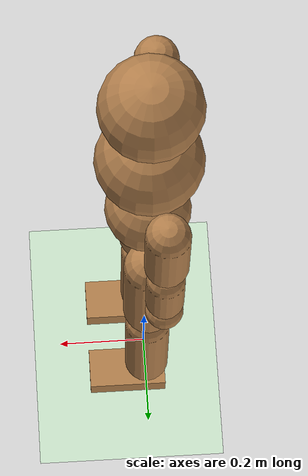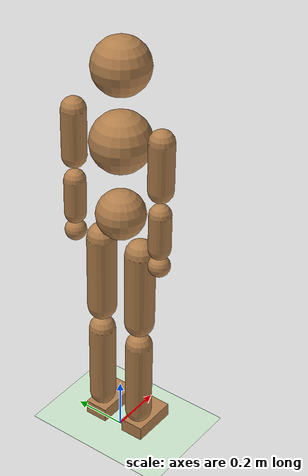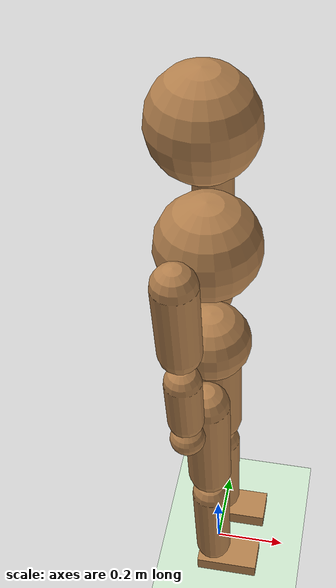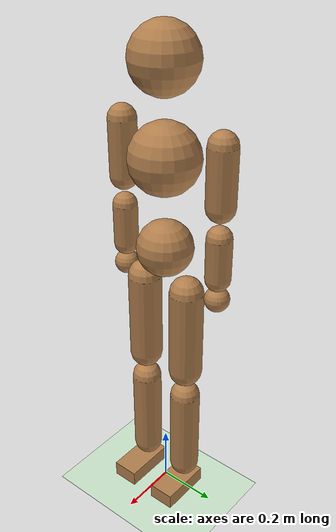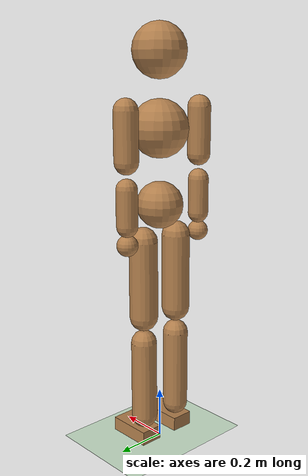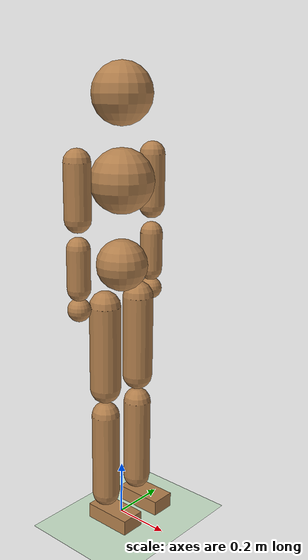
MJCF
<mujoco model="humanoid">
    <compiler angle="radian"/>

    <option iterations="1" ls_iterations="4" solver="Newton" cone="pyramidal" impratio="100">
        <flag eulerdamp="disable"/>
    </option>

    <default>
        <joint limited="true" armature="1" damping="1"/>
        <geom conaffinity="1" condim="3" contype="1" margin="0.001" rgba="0.7 0.5 .3 1"/>
        <motor ctrllimited="true" ctrlrange="-0.5 0.5"/>
    </default>
    <!-- #mjx doesnt suppor this -->
    <asset>
        <texture builtin="gradient" height="100" rgb1=".4 .5 .6" rgb2="0 0 0" type="skybox" width="100"/>
        <texture builtin="flat" height="1278" mark="cross" markrgb="1 1 1" name="texgeom" random="0.01" rgb1="0.8 0.6 0.4" rgb2="0.8 0.6 0.4" type="cube" width="127"/>
        <texture name="grid" type="2d" builtin="checker" rgb1=".1 .2 .3" rgb2=".2 .3 .4" width="300" height="300" mark="edge" markrgb=".2 .3 .4"/>
        <material name="MatPlane" reflectance="0.2" texrepeat="1 1" texuniform="true" texture="grid"/>
        <material name="geom" texture="texgeom" texuniform="true"/>
    </asset>
    <worldbody>
        <geom condim="3" friction="1 .1 .1" material="MatPlane" name="floor" pos="0 0 0" rgba="0.8 0.9 0.8 1" size="50 50 0.2" type="plane"/>
        <light cutoff="100" diffuse="1 1 1" dir="-0 0 -1.3" directional="true" exponent="1" pos="0 0 1.3" specular=".1 .1 .1"/>

        <body name="root" pos="0 0 0.9">
            <geom name="root"  pos="0 0 0.07" size=".09" type="sphere"/>
            <camera name="back" pos="-3 0 1" xyaxes="0 -1 0 1 0 2" mode="trackcom"/>
            <camera name="side" pos="0 -3 1" xyaxes="1 0 0 0 1 2" mode="trackcom"/>
            <joint armature="0" damping="0" limited="false" name="root" pos="0 0 0" stiffness="0" type="free"/>
            <body name="chest" pos="0 0 0.236151">
                <geom name="chest"  pos="0 0 0.12" size=".11" type="sphere"/>
                <joint name="chest_x" axis="1 0 0" pos="0 0 0" range="-1.2 1.2" type="hinge"/>
                <joint name="chest_y" axis="0 1 0" pos="0 0 0" range="-1.2 1.2" type="hinge"/>
                <joint name="chest_z" axis="0 0 1" pos="0 0 0" range="-1.2 1.2" type="hinge"/>
                <body name="neck" pos="0 0 0.223894">
                    <geom name="neck"  pos="0 0 0.175" size=".1025" type="sphere"/>
                </body>
                <body name="right_shoulder" pos="-0.02405 -0.18311 0.2435">
                    <geom fromto="0 0 -0.05 0 0 -0.23" name="right_shoulder"  size="0.045" type="capsule"/>
                    <joint name="right_shoulder_x" axis="1 0 0" pos="0 0 0" range="-3.14 0.5" type="hinge"/>
                    <joint name="right_shoulder_y" axis="0 1 0" pos="0 0 0" range="-3.14 0.7" type="hinge"/>

                    <body name="right_elbow" pos="0 0 -0.274788">
                        <geom fromto="0 0 -0.0525 0 0 -0.1875" name="right_elbow"  size="0.04" type="capsule"/>
                        <joint axis="0 -1 0" name="right_elbow" pos="0 0 0" range="0 2.8" type="hinge"/>
                        <geom name="right_wrist"  pos="0 0 -0.258947" size="0.04" type="sphere"/>
                    </body>
                </body>
                <body name="left_shoulder" pos="-0.02405 0.18311 0.2435">
                    <geom fromto="0 0 -0.05 0 0 -0.23" name="left_shoulder"  size="0.045" type="capsule"/>
                    <joint name="left_shoulder_x" axis="1 0 0" pos="0 0 0" range="-0.5 3.14"  type="hinge"/>
                    <joint name="left_shoulder_y" axis="0 1 0" pos="0 0 0" range="-3.14 0.7"  type="hinge"/>

                    <body name="left_elbow" pos="0 0 -0.274788">
                        <geom fromto="0 0 -0.0525 0 0 -0.1875" name="left_elbow"  size="0.04" type="capsule"/>
                        <joint axis="0 -1 0" name="left_elbow" pos="0 0 0" range="0 2.8" type="hinge"/>
                        <geom name="left_wrist"  pos="0 0 -0.258947" size="0.04" type="sphere"/>
                    </body>
                </body>
            </body>
            <body name="right_hip" pos="0 -0.084887 0">
                <geom fromto="0 0 -0.06 0 0 -0.36" name="right_hip"  size="0.055" type="capsule"/>
                <joint name="right_hip_x" axis="1 0 0" pos="0 0 0" range="-1.2 1.2" type="hinge"/>
                <joint name="right_hip_y" axis="0 1 0" pos="0 0 0" range="-2.57 1.57" type="hinge"/>
                <joint name="right_hip_z" axis="0 0 1" pos="0 0 0" range=" -1.0 1.0" type="hinge"/>
                <body name="right_knee" pos="0 0 -0.421546">
                    <geom fromto="0 0 -0.045 0 0 -0.355" name="right_knee"  size="0.05" type="capsule"/>
                    <joint axis="0 -1 0" name="right_knee" pos="0 0 0" range="-2.7 0.0" type="hinge"/>
                    <body name="right_ankle" pos="0 0 -0.40987">
                        <joint name="right_ankle_x" axis="1 0 0" pos="0 0 0" range="-1.0 1.0" type="hinge"/>
                        <joint name="right_ankle_y" axis="0 1 0" pos="0 0 0" range="-1.0 1.57" type="hinge"/>

                        <geom name="right_ankle"  pos="0.045 0 -0.0225" size="0.0885 0.045 0.0275" type="box"/>
                    </body>
                </body>
            </body>
            <body name="left_hip" pos="0 0.084887 0">
                <geom fromto="0 0 -0.06 0 0 -0.36" name="left_hip"  size="0.055" type="capsule"/>
                <joint name="left_hip_x" axis="1 0 0" pos="0 0 0" range="-1.2 1.2" type="hinge"/>
                <joint name="left_hip_y" axis="0 1 0" pos="0 0 0" range="-2.57 1.57" type="hinge"/>
                <joint name="left_hip_z" axis="0 0 1" pos="0 0 0" range="-1.0 1.0" type="hinge"/>
                <body name="left_knee" pos="0 0 -0.421546">
                    <geom fromto="0 0 -0.045 0 0 -0.355" name="left_knee"  size="0.05" type="capsule"/>
                    <joint axis="0 -1 0" name="left_knee" pos="0 0 0" range="-2.7 0.0" type="hinge"/>
                    <body name="left_ankle" pos="0 0 -0.40987">
                        <joint name="left_ankle_x" axis="1 0 0" pos="0 0 0" range="-1.0 1.0" type="hinge"/>
                        <joint name="left_ankle_y" axis="0 1 0" pos="0 0 0" range="-1.0 1.57" type="hinge"/>

                        <geom name="left_ankle"  pos="0.045 0 -0.0225" size="0.0885 0.045 0.0275" type="box"/>
                    </body>
                </body>
            </body>
        </body>

    </worldbody>

    <contact>
        <exclude body1="right_hip" body2="root"/>
        <exclude body1="left_hip" body2="root"/>
        <exclude body1="right_hip" body2="right_knee"/>
        <exclude body1="left_hip" body2="left_knee"/>
        <exclude body1="right_knee" body2="right_ankle"/>
        <exclude body1="left_knee" body2="left_ankle"/>
        <exclude body1="right_elbow" body2="right_shoulder"/>
        <exclude body1="left_elbow" body2="left_shoulder"/>
    </contact>

    <actuator>
        <motor gear="200" joint="chest_x" name="chest_x"/>
        <motor gear="200" joint="chest_y" name="chest_y"/>
        <motor gear="200" joint="chest_z" name="chest_z"/>

        <motor gear="100" joint="right_shoulder_x" name="right_shoulder_x"/>
        <motor gear="100" joint="right_shoulder_y" name="right_shoulder_y"/>

        <motor gear="60" joint="right_elbow" name="right_elbow"/>

        <motor gear="100" joint="left_shoulder_x" name="left_shoulder_x"/>
        <motor gear="100" joint="left_shoulder_y" name="left_shoulder_y"/>

        <motor gear="60" joint="left_elbow" name="left_elbow"/>

        <motor gear="200" joint="right_hip_x" name="right_hip_x"/>
        <motor gear="200" joint="right_hip_y" name="right_hip_y"/>
        <motor gear="200" joint="right_hip_z" name="right_hip_z"/>

        <motor gear="150" joint="right_knee" name="right_knee"/>
        <motor gear="90" joint="right_ankle_x" name="right_ankle_x"/>
        <motor gear="90" joint="right_ankle_y" name="right_ankle_y"/>

        <motor gear="200" joint="left_hip_x" name="left_hip_x"/>
        <motor gear="200" joint="left_hip_y" name="left_hip_y"/>
        <motor gear="200" joint="left_hip_z" name="left_hip_z"/>

        <motor gear="150" joint="left_knee" name="left_knee"/>
        <motor gear="90" joint="left_ankle_x" name="left_ankle_x"/>
        <motor gear="90" joint="left_ankle_y" name="left_ankle_y"/>

    </actuator>
</mujoco>
